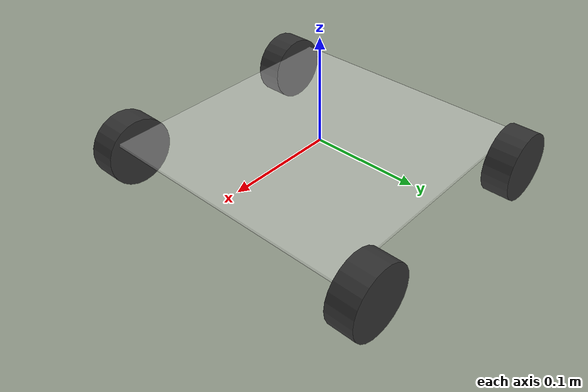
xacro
<?xml version="1.0"?>
<robot xmlns:xacro= "http://www.ros.org/wiki/xacro">

    <xacro:include filename ="inertial_macros.xacro"/>

    <material name = "acrylic">
        <color rgba="1 1 1 0.3"/>
    </material>

    <material name = "black">
        <color rgba ="0.2 0.2 0.2 1"/>
    </material>

    <!-- Base Link -->
    <link name = "base_link">
    </link>

    <!-- BASE_FOOTPRINT_LINK -->
    <joint name = "base_footprint_joint" type = "fixed">
        <parent link = "base_link"/>
        <child link="base_footprint"/>
        <origin xyz = "0 0 0" rpy="0 0 0"/>
    </joint>

    <link name = "base_footprint">

    </link>

    <!-- Chassis Link -->
    <joint name = "chassis_joint" type = "fixed">
        <parent link = "base_link"/>
        <child link = "chassis"/>
        <origin xyz = "0 0 0"/>
    </joint>

    <link name = "chassis">
        <visual>
            <origin xyz = "0 0 0.0015"/>
            <geometry>
                <box size = "0.25 0.25 0.003"/>
            </geometry>
            <material name = "acrylic"/>
        </visual>
        <collision>
            <origin xyz = "0 0 0.0015"/>
            <geometry>
                <box size = "0.25 0.25 0.003"/>
            </geometry>
        </collision>
        <xacro:inertial_box mass = "0.12" x = "0.25" y = "0.25" z = "0.003">
            <origin xyz = "0 0 0.0015" rpy = "0 0 0"/>
        </xacro:inertial_box>
    </link>

    <gazebo reference="chassis">
        <material>Gazebo/GreyTransparent</material>
    </gazebo>

    <!-- Left Front Wheel Link -->
    <joint name = "left_front_wheel_joint" type = "continuous">
        <parent link = "base_link"/>
        <child link = "left_front_wheel"/>
        <origin xyz = "0.105191 0.137497 -0.01597" rpy = "-${pi/2} 0 0 "/>
        <axis xyz = "0 0 1"/>
    </joint>

    <link name = "left_front_wheel">
        <visual>
            <geometry>
                <cylinder radius="0.0325" length="0.026"/>
            </geometry>
            <material name = "black"/>
        </visual>
        <collision>
            <geometry>
                <sphere radius="0.0325" />
            </geometry>
        </collision>
        <xacro:inertial_cylinder mass = "0.1" length = "0.026" radius = "0.0325">
            <orgin xyz = "0 0 0" rpy = "0 0 0" />
        </xacro:inertial_cylinder>
    </link>

    <gazebo reference="left_front_wheel">
        <material>Gazebo/FlatBlack</material>
    </gazebo>

    <!-- Right Front Wheel Link -->
    <joint name = "right_front_wheel_joint" type = "continuous">
        <parent link = "base_link"/>
        <child link = "right_front_wheel"/>
        <origin xyz = "0.105191 -0.137497 -0.01597" rpy = "${pi/2} 0 0 "/>
        <axis xyz = "0 0 -1"/>
    </joint>

    <link name = "right_front_wheel">
        <visual>
            <geometry>
                <cylinder radius="0.0325" length="0.026"/>
            </geometry>
            <material name = "black"/>
        </visual>
        <collision>
            <geometry>
                <sphere radius="0.0325" />
            </geometry>
        </collision>
        <xacro:inertial_cylinder mass = "0.1" length = "0.026" radius = "0.0325">
            <orgin xyz = "0 0 0" rpy = "0 0 0" />
        </xacro:inertial_cylinder>
    </link>

    <gazebo reference="right_front_wheel">
        <material>Gazebo/FlatBlack</material>
    </gazebo>

    <!-- Left Back Wheel Link -->
    <joint name = "left_back_wheel_joint" type = "continuous">
        <parent link = "base_link"/>
        <child link = "left_back_wheel"/>
        <origin xyz = "-0.105191 0.137497 -0.01597" rpy = "-${pi/2} 0 0 "/>
        <axis xyz = "0 0 1"/>
    </joint>

    <link name = "left_back_wheel">
        <visual>
            <geometry>
                <cylinder radius="0.0325" length="0.026"/>
            </geometry>
            <material name = "black"/>
        </visual>
        <collision>
            <geometry>
                <sphere radius="0.0325" />
            </geometry>
        </collision>
        <xacro:inertial_cylinder mass = "0.1" length = "0.026" radius = "0.0325">
            <orgin xyz = "0 0 0" rpy = "0 0 0" />
        </xacro:inertial_cylinder>
    </link>

    <gazebo reference="left_back_wheel">
        <material>Gazebo/FlatBlack</material>
    </gazebo>

    <!-- Right Back Wheel Link -->
    <joint name = "right_back_wheel_joint" type = "continuous">
        <parent link = "base_link"/>
        <child link = "right_back_wheel"/>
        <origin xyz = "-0.105191 -0.137497 -0.01597" rpy = "${pi/2} 0 0 "/>
        <axis xyz = "0 0 -1"/>
    </joint>

    <link name = "right_back_wheel">
        <visual>
            <geometry>
                <cylinder radius="0.0325" length="0.026"/>
            </geometry>
            <material name = "black"/>
        </visual>
        <collision>
            <geometry>
                <sphere radius="0.0325" />
            </geometry>
        </collision>
        <xacro:inertial_cylinder mass = "0.1" length = "0.026" radius = "0.0325">
            <orgin xyz = "0 0 0" rpy = "0 0 0" />
        </xacro:inertial_cylinder>
    </link>

    <gazebo reference="right_back_wheel">
        <material>Gazebo/FlatBlack</material>
    </gazebo>

</robot>
